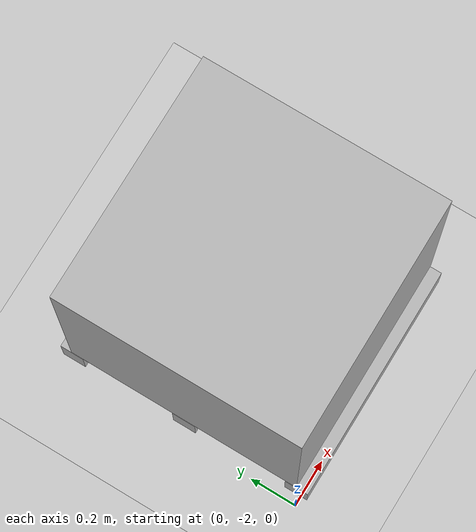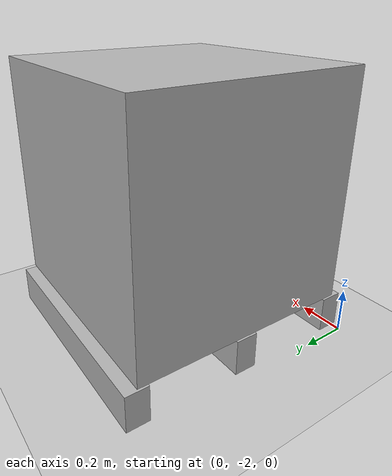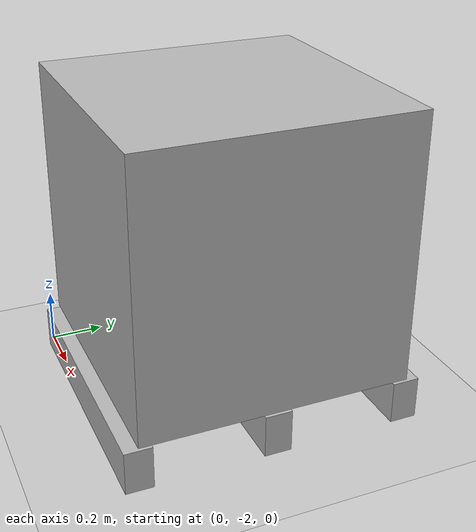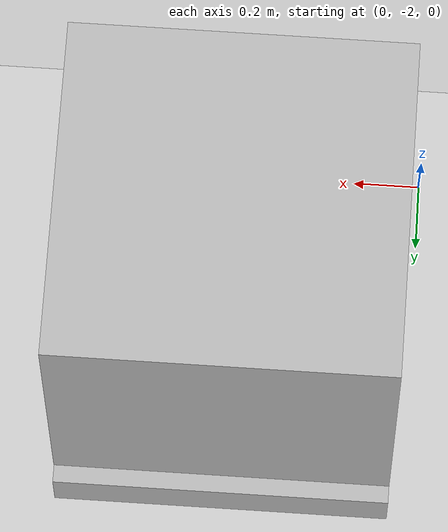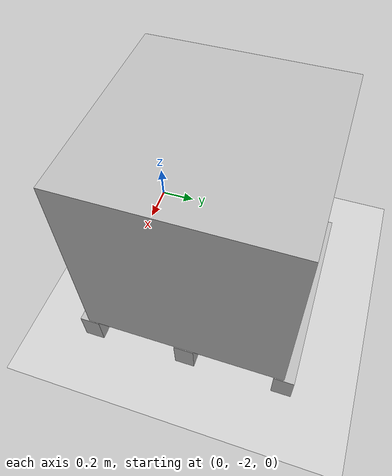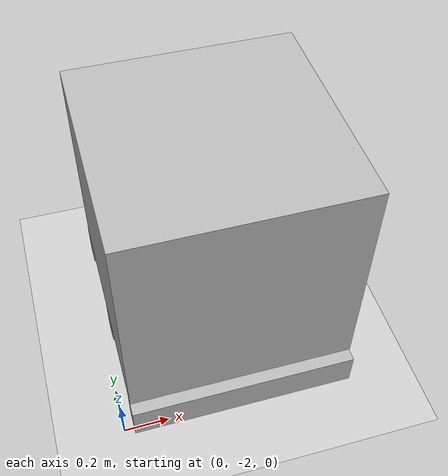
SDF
<sdf version="1.6">
 <world name="default">
  <light name="sun" type="directional">
   <pose>0 0 10 0 -0 0</pose>
   <diffuse>0.8 0.8 0.8 1</diffuse>
   <specular>0.1 0.1 0.1 1</specular>
   <attenuation>
    <range>1000</range>
    <constant>0.9</constant>
    <linear>0.01</linear>
    <quadratic>0.001</quadratic>
   </attenuation>
   <direction>-0.5 0.5 -1</direction>
  </light>
  <model name="ground_plane">
   <static>1</static>
   <link name="link">
    <collision name="collision">
     <geometry><plane><normal>0 0 1</normal><size>100 100</size></plane></geometry>
     <surface><friction><ode><mu>100</mu><mu2>50</mu2></ode></friction></surface>
    </collision>
    <visual name="visual">
     <cast_shadows>0</cast_shadows>
     <geometry><plane><normal>0 0 1</normal><size>100 100</size></plane></geometry>
     <material>
      <script><uri>file://media/materials/scripts/gazebo.material</uri><name>Gazebo/Grey</name></script>
     </material>
    </visual>
   </link>
  </model>
  <gravity>0 0 -9.8</gravity>
  <magnetic_field>6e-06 2.3e-05 -4.2e-05</magnetic_field>
  <atmosphere type="adiabatic"/>
  <physics name="default_physics" default="0" type="ode">
   <max_step_size>0.001</max_step_size>
   <real_time_factor>1</real_time_factor>
   <real_time_update_rate>1000</real_time_update_rate>
  </physics>
  <scene><ambient>0.4 0.4 0.4 1</ambient><background>0.7 0.7 0.7 1</background><shadows>1</shadows></scene>
  <spherical_coordinates>
   <surface_model>EARTH_WGS84</surface_model>
   <latitude_deg>0</latitude_deg>
   <longitude_deg>0</longitude_deg>
   <elevation>0</elevation>
   <heading_deg>0</heading_deg>
  </spherical_coordinates>
  <model name="cube200kg">
   <static>0</static>
   <link name="cube">
    <pose>2 0 0 0 -0 0</pose>
    <inertial>
     <mass>200</mass>
     <inertia><ixx>1</ixx><ixy>0</ixy><ixz>0</ixz><iyy>1</iyy><iyz>0</iyz><izz>1</izz></inertia>
    </inertial>
    <collision name="cube_collision">
     <pose>0 0 0.67 0 -0 0</pose>
     <geometry><box><size>1 1 1</size></box></geometry>
    </collision>
    <visual name="cube_visual">
     <pose>0 0 0.67 0 -0 0</pose>
     <geometry><box><size>1 1 1</size></box></geometry>
    </visual>
    <collision name="support1_collision">
     <pose>0 0.5 0.08 0 -0 0</pose>
     <geometry><box><size>1 0.1 0.16</size></box></geometry>
    </collision>
    <visual name="support1_visual">
     <pose>0 0.5 0.08 0 -0 0</pose>
     <geometry><box><size>1 0.1 0.16</size></box></geometry>
    </visual>
    <collision name="support2_collision">
     <pose>0 -0.5 0.08 0 -0 0</pose>
     <geometry><box><size>1 0.1 0.16</size></box></geometry>
    </collision>
    <visual name="support2_visual">
     <pose>0 -0.5 0.08 0 -0 0</pose>
     <geometry><box><size>1 0.1 0.16</size></box></geometry>
    </visual>
    <collision name="support_mid_collision">
     <pose>0 -0.5 0.08 0 -0 0</pose>
     <geometry><box><size>1 0.1 0.16</size></box></geometry>
    </collision>
    <visual name="support_mid_visual">
     <pose>0 0 0.08 0 -0 0</pose>
     <geometry><box><size>1 0.1 0.16</size></box></geometry>
    </visual>
   </link>
   <pose>-1.45807 -1.47613 0 0 -0 0</pose>
  </model>
 </world>
</sdf>
